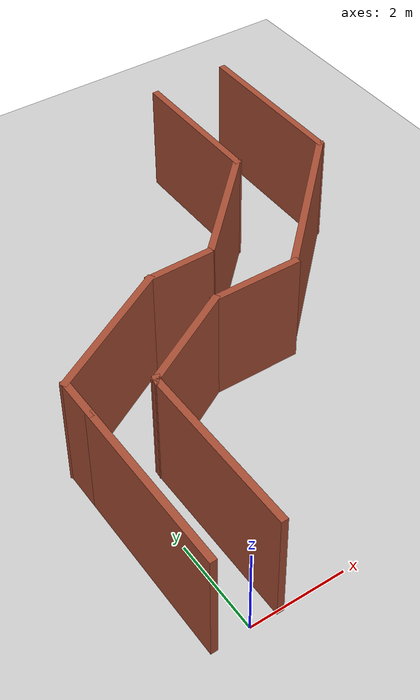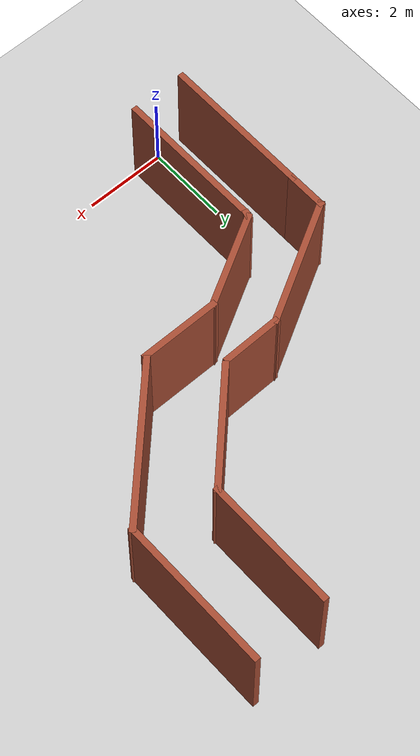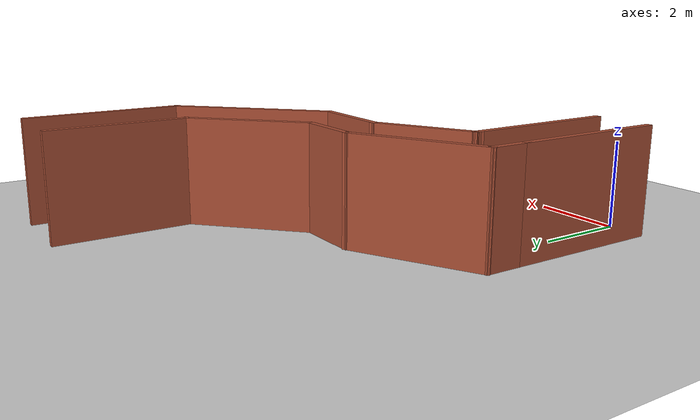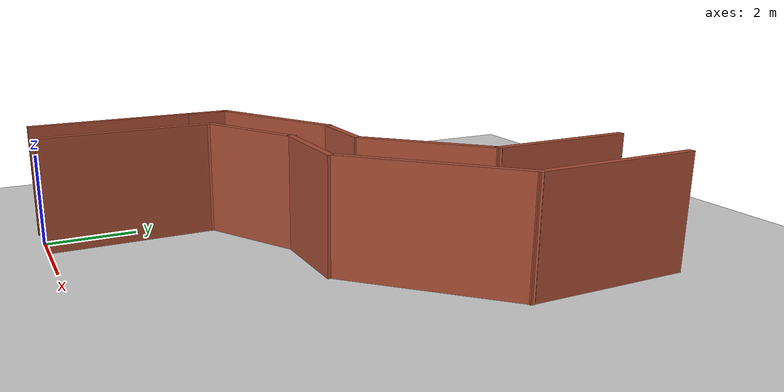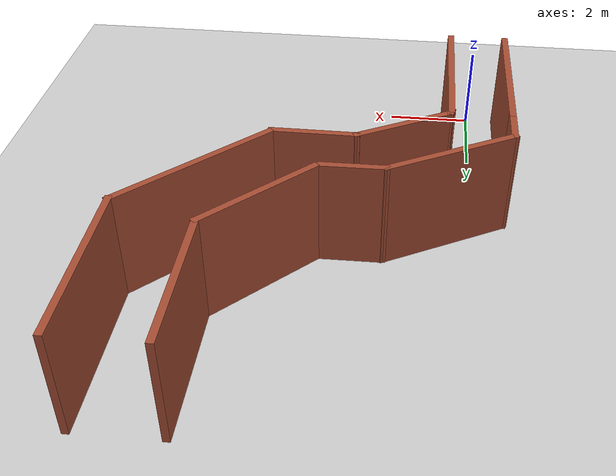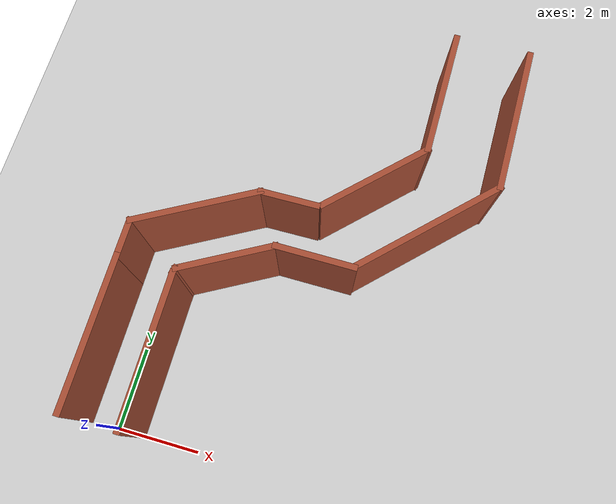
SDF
<sdf version="1.6">
 <world name="default">
  <light name="sun" type="directional">
   <pose>0 0 10 0 -0 0</pose>
   <diffuse>0.8 0.8 0.8 1</diffuse>
   <specular>0.1 0.1 0.1 1</specular>
   <attenuation>
    <range>1000</range>
    <constant>0.9</constant>
    <linear>0.01</linear>
    <quadratic>0.001</quadratic>
   </attenuation>
   <direction>-0.5 0.5 -1</direction>
  </light>
  <model name="ground_plane">
   <static>1</static>
   <link name="link">
    <collision name="collision">
     <geometry><plane><normal>0 0 1</normal><size>100 100</size></plane></geometry>
     <surface><friction><ode><mu>100</mu><mu2>50</mu2></ode></friction></surface>
    </collision>
    <visual name="visual">
     <cast_shadows>0</cast_shadows>
     <geometry><plane><normal>0 0 1</normal><size>100 100</size></plane></geometry>
     <material>
      <script><uri>file://media/materials/scripts/gazebo.material</uri><name>Gazebo/Grey</name></script>
     </material>
    </visual>
   </link>
  </model>
  <gravity>0 0 -9.8</gravity>
  <magnetic_field>6e-06 2.3e-05 -4.2e-05</magnetic_field>
  <atmosphere type="adiabatic"/>
  <physics name="default_physics" default="0" type="ode">
   <max_step_size>0.01</max_step_size>
   <real_time_factor>1</real_time_factor>
   <real_time_update_rate>0</real_time_update_rate>
  </physics>
  <scene><ambient>0.4 0.4 0.4 1</ambient><background>0.7 0.7 0.7 1</background><shadows>1</shadows></scene>
  <spherical_coordinates>
   <surface_model>EARTH_WGS84</surface_model>
   <latitude_deg>0</latitude_deg>
   <longitude_deg>0</longitude_deg>
   <elevation>0</elevation>
   <heading_deg>0</heading_deg>
  </spherical_coordinates>
  <model name="path11">
   <pose>1.84919 3.73688 0 0 -0 0</pose>
   <link name="Wall_11">
    <collision name="Wall_11_Collision">
     <geometry><box><size>3.75 0.15 2.5</size></box></geometry>
     <pose>0 0 1.25 0 -0 0</pose>
    </collision>
    <visual name="Wall_11_Visual">
     <pose>0 0 1.25 0 -0 0</pose>
     <geometry><box><size>3.75 0.15 2.5</size></box></geometry>
     <material>
      <script><uri>file://media/materials/scripts/gazebo.material</uri><name>Gazebo/Bricks</name></script>
      <ambient>1 1 1 1</ambient>
     </material>
    </visual>
    <pose>-2.59819 -1.90788 0 0 -0 1.5708</pose>
   </link>
   <link name="Wall_13">
    <collision name="Wall_13_Collision">
     <geometry><box><size>1.01982 0.15 2.5</size></box></geometry>
     <pose>0 0 1.25 0 -0 0</pose>
    </collision>
    <visual name="Wall_13_Visual">
     <pose>0 0 1.25 0 -0 0</pose>
     <geometry><box><size>1.01982 0.15 2.5</size></box></geometry>
     <material>
      <script><uri>file://media/materials/scripts/gazebo.material</uri><name>Gazebo/Bricks</name></script>
      <ambient>1 1 1 1</ambient>
     </material>
    </visual>
    <pose>-2.59819 0.327121 0 0 -0 1.5708</pose>
   </link>
   <link name="Wall_14">
    <collision name="Wall_14_Collision">
     <geometry><box><size>3.20253 0.15 2.5</size></box></geometry>
     <pose>0 0 1.25 0 -0 0</pose>
    </collision>
    <visual name="Wall_14_Visual">
     <pose>0 0 1.25 0 -0 0</pose>
     <geometry><box><size>3.20253 0.15 2.5</size></box></geometry>
     <material>
      <script><uri>file://media/materials/scripts/gazebo.material</uri><name>Gazebo/Bricks</name></script>
      <ambient>1 1 1 1</ambient>
     </material>
    </visual>
    <pose>-1.26419 1.50462 0 0 -0 0.507894</pose>
   </link>
   <link name="Wall_16">
    <collision name="Wall_16_Collision">
     <geometry><box><size>2.44292 0.15 2.5</size></box></geometry>
     <pose>0 0 1.25 0 -0 0</pose>
    </collision>
    <visual name="Wall_16_Visual">
     <pose>0 0 1.25 0 -0 0</pose>
     <geometry><box><size>2.44292 0.15 2.5</size></box></geometry>
     <material>
      <script><uri>file://media/materials/scripts/gazebo.material</uri><name>Gazebo/Bricks</name></script>
      <ambient>1 1 1 1</ambient>
     </material>
    </visual>
    <pose>-0.226693 0.530121 0 0 0 -2.63327</pose>
   </link>
   <link name="Wall_17">
    <collision name="Wall_17_Collision">
     <geometry><box><size>0.25 0.15 2.5</size></box></geometry>
     <pose>0 0 1.25 0 -0 0</pose>
    </collision>
    <visual name="Wall_17_Visual">
     <pose>0 0 1.25 0 -0 0</pose>
     <geometry><box><size>0.25 0.15 2.5</size></box></geometry>
     <material>
      <script><uri>file://media/materials/scripts/gazebo.material</uri><name>Gazebo/Bricks</name></script>
      <ambient>1 1 1 1</ambient>
     </material>
    </visual>
    <pose>-1.24119 -0.076379 0 0 0 -1.83268</pose>
   </link>
   <link name="Wall_26">
    <collision name="Wall_26_Collision">
     <geometry><box><size>1.5 0.15 2.5</size></box></geometry>
     <pose>0 0 1.25 0 -0 0</pose>
    </collision>
    <visual name="Wall_26_Visual">
     <pose>0 0 1.25 0 -0 0</pose>
     <geometry><box><size>1.5 0.15 2.5</size></box></geometry>
     <material>
      <script><uri>file://media/materials/scripts/gazebo.material</uri><name>Gazebo/Bricks</name></script>
      <ambient>1 1 1 1</ambient>
     </material>
    </visual>
    <pose>0.744807 2.25712 0 0 -0 0.014814</pose>
   </link>
   <link name="Wall_31">
    <collision name="Wall_31_Collision">
     <geometry><box><size>2 0.15 2.5</size></box></geometry>
     <pose>0 0 1.25 0 -0 0</pose>
    </collision>
    <visual name="Wall_31_Visual">
     <pose>0 0 1.25 0 -0 0</pose>
     <geometry><box><size>2 0.15 2.5</size></box></geometry>
     <material>
      <script><uri>file://media/materials/scripts/gazebo.material</uri><name>Gazebo/Bricks</name></script>
      <ambient>1 1 1 1</ambient>
     </material>
    </visual>
    <pose>1.69981 1.08812 0 0 -0 3.14159</pose>
   </link>
   <link name="Wall_9">
    <collision name="Wall_9_Collision">
     <geometry><box><size>3.73341 0.15 2.5</size></box></geometry>
     <pose>0 0 1.25 0 -0 0</pose>
    </collision>
    <visual name="Wall_9_Visual">
     <pose>0 0 1.25 0 -0 0</pose>
     <geometry><box><size>3.73341 0.15 2.5</size></box></geometry>
     <material>
      <script><uri>file://media/materials/scripts/gazebo.material</uri><name>Gazebo/Bricks</name></script>
      <ambient>1 1 1 1</ambient>
     </material>
    </visual>
    <pose>-1.25119 -1.91638 0 0 -0 1.57247</pose>
   </link>
   <static>1</static>
  </model>
  <model name="Mod_ali_path1">
   <pose>5.30413 8.02578 0 0 -0 0</pose>
   <link name="Wall_10">
    <collision name="Wall_10_Collision">
     <geometry><box><size>3.25 0.15 2.5</size></box></geometry>
     <pose>0 0 1.25 0 -0 0</pose>
    </collision>
    <visual name="Wall_10_Visual">
     <pose>0 0 1.25 0 -0 0</pose>
     <geometry><box><size>3.25 0.15 2.5</size></box></geometry>
     <material>
      <script><uri>file://media/materials/scripts/gazebo.material</uri><name>Gazebo/Bricks</name></script>
      <ambient>1 1 1 1</ambient>
     </material>
    </visual>
    <pose>0.09136 1.59547 0 0 -0 1.5708</pose>
   </link>
   <link name="Wall_4">
    <collision name="Wall_4_Collision">
     <geometry><box><size>4 0.15 2.5</size></box></geometry>
     <pose>0 0 1.25 0 -0 0</pose>
    </collision>
    <visual name="Wall_4_Visual">
     <pose>0 0 1.25 0 -0 0</pose>
     <geometry><box><size>4 0.15 2.5</size></box></geometry>
     <material>
      <script><uri>file://media/materials/scripts/gazebo.material</uri><name>Gazebo/Bricks</name></script>
      <ambient>1 1 1 1</ambient>
     </material>
    </visual>
    <pose>0.562713 -1.78447 0 0 0 -2.35619</pose>
   </link>
   <link name="Wall_6">
    <collision name="Wall_6_Collision">
     <geometry><box><size>3 0.15 2.5</size></box></geometry>
     <pose>0 0 1.25 0 -0 0</pose>
    </collision>
    <visual name="Wall_6_Visual">
     <pose>0 0 1.25 0 -0 0</pose>
     <geometry><box><size>3 0.15 2.5</size></box></geometry>
     <material>
      <script><uri>file://media/materials/scripts/gazebo.material</uri><name>Gazebo/Bricks</name></script>
      <ambient>1 1 1 1</ambient>
     </material>
    </visual>
    <pose>-0.916267 -0.962156 0 0 -0 0.785398</pose>
   </link>
   <link name="Wall_8">
    <collision name="Wall_8_Collision">
     <geometry><box><size>3.75 0.15 2.5</size></box></geometry>
     <pose>0 0 1.25 0 -0 0</pose>
    </collision>
    <visual name="Wall_8_Visual">
     <pose>0 0 1.25 0 -0 0</pose>
     <geometry><box><size>3.75 0.15 2.5</size></box></geometry>
     <material>
      <script><uri>file://media/materials/scripts/gazebo.material</uri><name>Gazebo/Bricks</name></script>
      <ambient>1 1 1 1</ambient>
     </material>
    </visual>
    <pose>1.92389 1.37671 0 0 -0 1.5708</pose>
   </link>
   <static>1</static>
  </model>
 </world>
</sdf>
